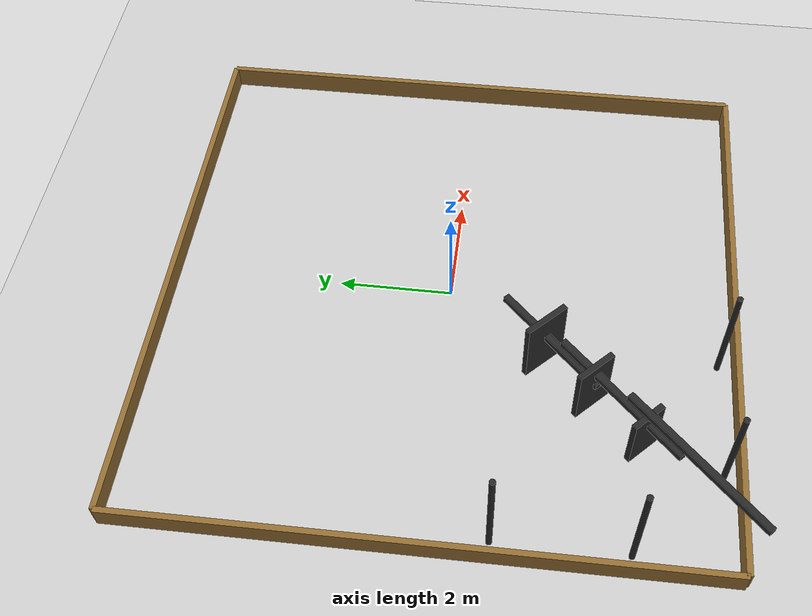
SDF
<?xml version="1.0" ?>
<sdf version="1.8">

  <world name="arena10_occ_heavy">

    <!-- Physics configuration -->
    <physics name="default_physics" type="ode">
      <max_step_size>0.001</max_step_size>
      <real_time_factor>1.0</real_time_factor>
      <real_time_update_rate>1000</real_time_update_rate>
    </physics>

    <!-- Core Gazebo Sim systems    -->
    <!-- (NO ROS PLUGINS HERE)     -->

    <plugin name="gz::sim::systems::Physics"
            filename="gz-sim-physics-system"/>

    <plugin name="gz::sim::systems::UserCommands"
            filename="gz-sim-user-commands-system"/>

    <plugin name="gz::sim::systems::SceneBroadcaster"
            filename="gz-sim-scene-broadcaster-system"/>

    <plugin name="gz::sim::systems::Contact"
            filename="gz-sim-contact-system"/>

    <plugin name="gz::sim::systems::Sensors"
            filename="gz-sim-sensors-system">
      <render_engine>ogre2</render_engine>
    </plugin>

    <!-- Environment settings  -->
    <gravity>0 0 -9.81</gravity>
    <magnetic_field>6e-06 2.3e-05 -4.2e-05</magnetic_field>
    <atmosphere type="adiabatic"/>

    <scene>
      <ambient>0.4 0.4 0.4 1</ambient>
      <background>0.7 0.7 0.7 1</background>
      <shadows>true</shadows>
    </scene>

    <!-- Ground plane          -->
    <model name="ground_plane">
      <static>true</static>

      <link name="link">

        <collision name="collision">
          <geometry>
            <plane>
              <normal>0 0 1</normal>
              <size>10 10</size>
            </plane>
          </geometry>
        </collision>

        <visual name="visual">
          <geometry>
            <plane>
              <normal>0 0 1</normal>
              <size>10 10</size>
            </plane>
          </geometry>
          <material>
            <ambient>0.8 0.8 0.8 1</ambient>
            <diffuse>0.8 0.8 0.8 1</diffuse>
            <specular>0.2 0.2 0.2 1</specular>
          </material>
        </visual>

      </link>
    </model>

    <!-- Arena walls           -->
    <model name="arena_walls">
      <static>true</static>

      <link name="wall_x_pos">
        <pose>5 0 0.2 0 0 0</pose>
        <collision name="collision">
          <geometry>
            <box>
              <size>0.1 10 0.4</size>
            </box>
          </geometry>
        </collision>
        <visual name="visual">
          <geometry>
            <box>
              <size>0.1 10 0.4</size>
            </box>
          </geometry>
          <material>
            <ambient>0.58 0.43 0.2 1.0</ambient>
            <diffuse>0.58 0.43 0.2 1.0</diffuse>
            <specular>0.1 0.1 0.1 1.0</specular>
          </material>
        </visual>
      </link>

      <link name="wall_x_neg">
        <pose>-5 0 0.2 0 0 0</pose>
        <collision name="collision">
          <geometry>
            <box>
              <size>0.1 10 0.4</size>
            </box>
          </geometry>
        </collision>
        <visual name="visual">
          <geometry>
            <box>
              <size>0.1 10 0.4</size>
            </box>
          </geometry>
          <material>
            <ambient>0.58 0.43 0.2 1.0</ambient>
            <diffuse>0.58 0.43 0.2 1.0</diffuse>
            <specular>0.1 0.1 0.1 1.0</specular>
          </material>
        </visual>
      </link>

      <link name="wall_y_pos">
        <pose>0 5 0.2 0 0 0</pose>
        <collision name="collision">
          <geometry>
            <box>
              <size>10 0.1 0.4</size>
            </box>
          </geometry>
        </collision>
        <visual name="visual">
          <geometry>
            <box>
              <size>10 0.1 0.4</size>
            </box>
          </geometry>
          <material>
            <ambient>0.58 0.43 0.2 1.0</ambient>
            <diffuse>0.58 0.43 0.2 1.0</diffuse>
            <specular>0.1 0.1 0.1 1.0</specular>
          </material>
        </visual>
      </link>

      <link name="wall_y_neg">
        <pose>0 -5 0.2 0 0 0</pose>
        <collision name="collision">
          <geometry>
            <box>
              <size>10 0.1 0.4</size>
            </box>
          </geometry>
        </collision>
        <visual name="visual">
          <geometry>
            <box>
              <size>10 0.1 0.4</size>
            </box>
          </geometry>
          <material>
            <ambient>0.58 0.43 0.2 1.0</ambient>
            <diffuse>0.58 0.43 0.2 1.0</diffuse>
            <specular>0.1 0.1 0.1 1.0</specular>
          </material>
        </visual>
      </link>
    </model>

    <!-- Camera occluders      -->
    <model name="camera_occluders">
      <static>true</static>

      <link name="pole_sw">
        <pose>-4.70 -3.30 1.00 0 0 0</pose>
        <visual name="visual">
          <geometry>
            <cylinder>
              <radius>0.05</radius>
              <length>2.00</length>
            </cylinder>
          </geometry>
          <material>
            <ambient>0.15 0.15 0.15 1.0</ambient>
            <diffuse>0.15 0.15 0.15 1.0</diffuse>
            <specular>0.02 0.02 0.02 1.0</specular>
          </material>
        </visual>
      </link>

      <link name="pole_w">
        <pose>-4.70 -1.10 1.00 0 0 0</pose>
        <visual name="visual">
          <geometry>
            <cylinder>
              <radius>0.05</radius>
              <length>2.00</length>
            </cylinder>
          </geometry>
          <material>
            <ambient>0.15 0.15 0.15 1.0</ambient>
            <diffuse>0.15 0.15 0.15 1.0</diffuse>
            <specular>0.02 0.02 0.02 1.0</specular>
          </material>
        </visual>
      </link>

      <link name="pole_s">
        <pose>-3.30 -4.70 1.00 0 0 0</pose>
        <visual name="visual">
          <geometry>
            <cylinder>
              <radius>0.05</radius>
              <length>2.00</length>
            </cylinder>
          </geometry>
          <material>
            <ambient>0.15 0.15 0.15 1.0</ambient>
            <diffuse>0.15 0.15 0.15 1.0</diffuse>
            <specular>0.02 0.02 0.02 1.0</specular>
          </material>
        </visual>
      </link>

      <link name="pole_s2">
        <pose>-1.10 -4.70 1.00 0 0 0</pose>
        <visual name="visual">
          <geometry>
            <cylinder>
              <radius>0.05</radius>
              <length>2.00</length>
            </cylinder>
          </geometry>
          <material>
            <ambient>0.15 0.15 0.15 1.0</ambient>
            <diffuse>0.15 0.15 0.15 1.0</diffuse>
            <specular>0.02 0.02 0.02 1.0</specular>
          </material>
        </visual>
      </link>

      <link name="beam_diag_1">
        <pose>-4.00 -4.00 1.90 0 0 0.7854</pose>
        <visual name="visual">
          <geometry>
            <box>
              <size>2.80 0.11 0.11</size>
            </box>
          </geometry>
          <material>
            <ambient>0.15 0.15 0.15 1.0</ambient>
            <diffuse>0.15 0.15 0.15 1.0</diffuse>
            <specular>0.02 0.02 0.02 1.0</specular>
          </material>
        </visual>
      </link>

      <link name="beam_diag_2">
        <pose>-2.90 -2.90 1.65 0 0 0.7854</pose>
        <visual name="visual">
          <geometry>
            <box>
              <size>2.60 0.11 0.11</size>
            </box>
          </geometry>
          <material>
            <ambient>0.15 0.15 0.15 1.0</ambient>
            <diffuse>0.15 0.15 0.15 1.0</diffuse>
            <specular>0.02 0.02 0.02 1.0</specular>
          </material>
        </visual>
      </link>

      <link name="beam_diag_3">
        <pose>-1.80 -1.80 1.40 0 0 0.7854</pose>
        <visual name="visual">
          <geometry>
            <box>
              <size>2.20 0.11 0.11</size>
            </box>
          </geometry>
          <material>
            <ambient>0.15 0.15 0.15 1.0</ambient>
            <diffuse>0.15 0.15 0.15 1.0</diffuse>
            <specular>0.02 0.02 0.02 1.0</specular>
          </material>
        </visual>
      </link>

      <link name="slat_1">
        <pose>-3.30 -3.30 1.35 0 0 0.7854</pose>
        <visual name="visual">
          <geometry>
            <box>
              <size>0.10 0.60 1.00</size>
            </box>
          </geometry>
          <material>
            <ambient>0.15 0.15 0.15 1.0</ambient>
            <diffuse>0.15 0.15 0.15 1.0</diffuse>
            <specular>0.02 0.02 0.02 1.0</specular>
          </material>
        </visual>
      </link>

      <link name="slat_2">
        <pose>-2.50 -2.50 1.30 0 0 0.7854</pose>
        <visual name="visual">
          <geometry>
            <box>
              <size>0.10 0.70 1.10</size>
            </box>
          </geometry>
          <material>
            <ambient>0.15 0.15 0.15 1.0</ambient>
            <diffuse>0.15 0.15 0.15 1.0</diffuse>
            <specular>0.02 0.02 0.02 1.0</specular>
          </material>
        </visual>
      </link>

      <link name="slat_3">
        <pose>-1.70 -1.70 1.25 0 0 0.7854</pose>
        <visual name="visual">
          <geometry>
            <box>
              <size>0.10 0.80 1.20</size>
            </box>
          </geometry>
          <material>
            <ambient>0.15 0.15 0.15 1.0</ambient>
            <diffuse>0.15 0.15 0.15 1.0</diffuse>
            <specular>0.02 0.02 0.02 1.0</specular>
          </material>
        </visual>
      </link>
    </model>

    <!-- External camera       -->
    <include>
      <uri>model://external_camera</uri>
      <pose>-6 -6 3 0 0.3398 0.7854</pose>
    </include>

    <!-- Lighting              -->
    <light name="sun" type="directional">
      <pose>0 0 10 0 0 0</pose>
      <cast_shadows>true</cast_shadows>
      <intensity>1.0</intensity>
      <direction>-0.5 0.1 -0.9</direction>
    </light>

  </world>
</sdf>

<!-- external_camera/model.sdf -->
<sdf version="1.6">
  <model name="external_camera">
    <static>true</static>
    <pose>0 0 0 0 0 0</pose>
    <link name="link">
      <sensor name="camera" type="camera">
        <camera>
          <horizontal_fov>1.5708</horizontal_fov> <!-- 90 degrees -->
          <image>
            <width>1280</width>
            <height>720</height>
          </image>
          <clip>
            <near>0.1</near>
            <far>100</far>
          </clip>
        </camera>
        <always_on>1</always_on>
        <update_rate>5</update_rate>
        <visualize>false</visualize>
        <topic>external_camera/image_raw</topic>
      </sensor>
      <sensor name="depth_camera" type="depth_camera">
        <camera>
          <horizontal_fov>1.5708</horizontal_fov>
          <image><width>1280</width><height>720</height><format>R_FLOAT32</format></image>
          <clip><near>0.1</near><far>100</far></clip>
        </camera>
        <always_on>0</always_on>
        <update_rate>5</update_rate>
        <visualize>false</visualize>
        <topic>external_camera/depth</topic>
      </sensor>
      <sensor name="segmentation_camera" type="segmentation">
        <camera>
          <segmentation_type>semantic</segmentation_type>
          <horizontal_fov>1.5708</horizontal_fov>
          <image>
            <width>1280</width>
            <height>720</height>
          </image>
          <clip>
            <near>0.1</near>
            <far>100</far>
          </clip>
        </camera>
        <always_on>0</always_on>
        <update_rate>1</update_rate>
        <visualize>false</visualize>
        <topic>external_camera/segmentation</topic>
      </sensor>
    </link>
  </model>
</sdf>
